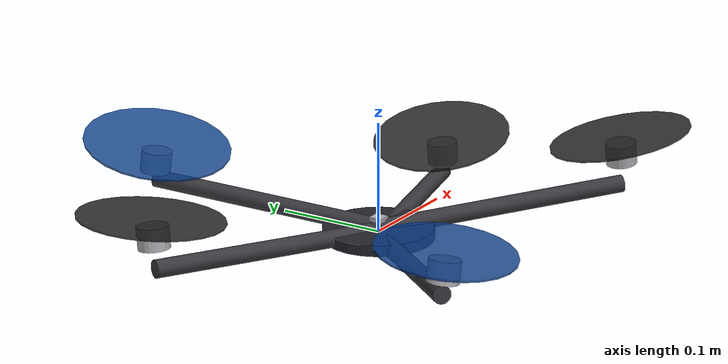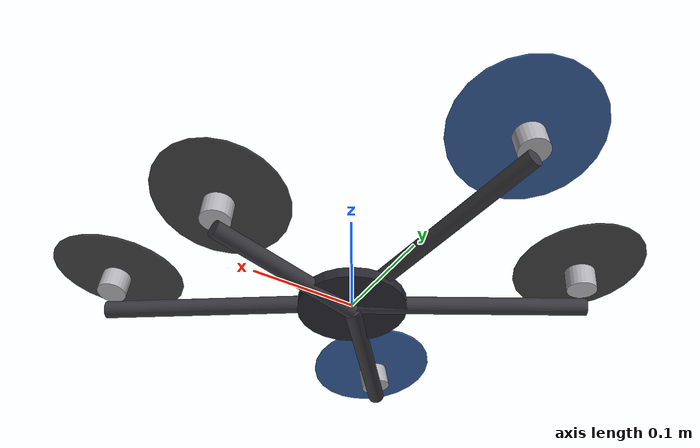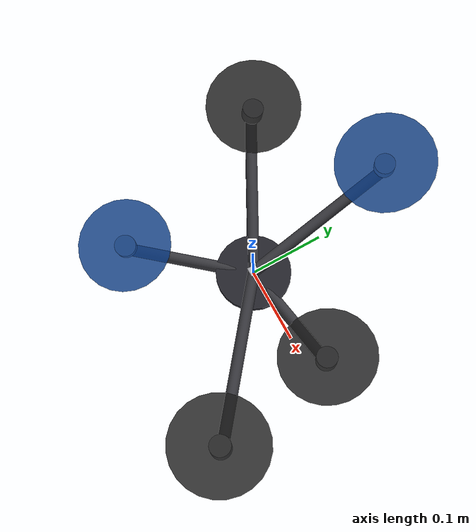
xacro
<?xml version="1.0"?>
<robot name="asymmetric_5rotor_drone" xmlns:xacro="http://www.ros.org/wiki/xacro">

  <material name="mat_core"><color rgba="0.15 0.15 0.18 1.0"/></material>
  <material name="mat_arm"><color rgba="0.22 0.22 0.24 1.0"/></material>
  <material name="mat_motor"><color rgba="0.70 0.70 0.72 1.0"/></material>
  <material name="mat_rotor_ccw"><color rgba="0.10 0.10 0.10 0.85"/></material>
  <material name="mat_rotor_cw"><color rgba="0.05 0.25 0.55 0.85"/></material>

  <xacro:macro name="inertial_box" params="mass x y z">
    <inertial><origin xyz="0 0 0" rpy="0 0 0"/><mass value="${mass}"/><inertia ixx="${mass*(y*y + z*z)/12.0}" ixy="0.0" ixz="0.0" iyy="${mass*(x*x + z*z)/12.0}" iyz="0.0" izz="${mass*(x*x + y*y)/12.0}"/></inertial>
  </xacro:macro>
  <xacro:macro name="inertial_cylinder_z" params="mass radius length">
    <inertial><origin xyz="0 0 0" rpy="0 0 0"/><mass value="${mass}"/><inertia ixx="${mass*(3*radius*radius + length*length)/12.0}" ixy="0.0" ixz="0.0" iyy="${mass*(3*radius*radius + length*length)/12.0}" iyz="0.0" izz="${0.5*mass*radius*radius}"/></inertial>
  </xacro:macro>

  <link name="base_link">
    <visual><geometry><cylinder radius="0.050000" length="0.010000"/></geometry><material name="mat_core"/></visual>
    <collision><geometry><cylinder radius="0.050000" length="0.010000"/></geometry></collision>
    <xacro:inertial_cylinder_z mass="0.400000" radius="0.050000" length="0.010000"/>
  </link>

  <link name="imu_link">
    <visual><origin xyz="0 0 0.012" rpy="0 0 0"/><geometry><box size="0.012 0.012 0.004"/></geometry><material name="mat_motor"/></visual>
    <collision><origin xyz="0 0 0.012" rpy="0 0 0"/><geometry><box size="0.012 0.012 0.004"/></geometry></collision>
    <xacro:inertial_box mass="0.005" x="0.012" y="0.012" z="0.004"/>
  </link>
  <joint name="imu_joint" type="fixed"><parent link="base_link"/><child link="imu_link"/><origin xyz="0 0 0" rpy="0 0 0"/></joint>

  <link name="arm_1_arm_link">
    <visual><origin xyz="0.076341 0 0" rpy="0 1.57079632679 0"/><geometry><cylinder radius="0.008000" length="0.152682"/></geometry><material name="mat_arm"/></visual>
    <collision><origin xyz="0.076341 0 0" rpy="0 1.57079632679 0"/><geometry><cylinder radius="0.008000" length="0.152682"/></geometry></collision>
    <xacro:inertial_cylinder_z mass="0.027483" radius="0.008000" length="0.152682"/>
  </link>
  <joint name="base_to_arm_1_arm_joint" type="fixed"><parent link="base_link"/><child link="arm_1_arm_link"/><origin xyz="0.000000 0.000000 -0.005627" rpy="0.001071 -0.094693 0.157147"/></joint>

  <link name="arm_1_motor_link">
    <visual><geometry><cylinder radius="0.014000" length="0.020000"/></geometry><material name="mat_motor"/></visual>
    <collision><geometry><cylinder radius="0.014000" length="0.020000"/></geometry></collision>
    <xacro:inertial_cylinder_z mass="0.060000" radius="0.014000" length="0.020000"/>
  </link>
  <joint name="arm_1_arm_to_motor_joint" type="fixed"><parent link="arm_1_arm_link"/><child link="arm_1_motor_link"/><origin xyz="0.152682 0.000000 0.019086" rpy="-0.048186 0.023982 0.017977"/></joint>

  <link name="arm_1_rotor_link">
    <visual><origin xyz="0 0 0" rpy="0.000000 0.000000 0.000000"/><geometry><cylinder radius="0.063839" length="0.002000"/></geometry><material name="mat_rotor_ccw"/></visual>
    <collision><origin xyz="0 0 0" rpy="0.000000 0.000000 0.000000"/><geometry><cylinder radius="0.063839" length="0.002000"/></geometry></collision>
    <xacro:inertial_cylinder_z mass="0.010000" radius="0.010000" length="0.006000"/>
  </link>
  <joint name="arm_1_motor_to_rotor_joint" type="fixed"><parent link="arm_1_motor_link"/><child link="arm_1_rotor_link"/><origin xyz="0.000000 0.000000 0.016000" rpy="0.058367 -0.148974 -0.296101"/></joint>

  <link name="arm_2_arm_link">
    <visual><origin xyz="0.111262 0 0" rpy="0 1.57079632679 0"/><geometry><cylinder radius="0.008000" length="0.222524"/></geometry><material name="mat_arm"/></visual>
    <collision><origin xyz="0.111262 0 0" rpy="0 1.57079632679 0"/><geometry><cylinder radius="0.008000" length="0.222524"/></geometry></collision>
    <xacro:inertial_cylinder_z mass="0.040054" radius="0.008000" length="0.222524"/>
  </link>
  <joint name="base_to_arm_2_arm_joint" type="fixed"><parent link="base_link"/><child link="arm_2_arm_link"/><origin xyz="0.000000 0.000000 0.003963" rpy="-0.031950 -0.068904 1.728060"/></joint>

  <link name="arm_2_motor_link">
    <visual><geometry><cylinder radius="0.014000" length="0.020000"/></geometry><material name="mat_motor"/></visual>
    <collision><geometry><cylinder radius="0.014000" length="0.020000"/></geometry></collision>
    <xacro:inertial_cylinder_z mass="0.060000" radius="0.014000" length="0.020000"/>
  </link>
  <joint name="arm_2_arm_to_motor_joint" type="fixed"><parent link="arm_2_arm_link"/><child link="arm_2_motor_link"/><origin xyz="0.222524 0.000000 0.017354" rpy="0.073154 -0.026145 -0.162902"/></joint>

  <link name="arm_2_rotor_link">
    <visual><origin xyz="0 0 0" rpy="0.000000 0.000000 0.000000"/><geometry><cylinder radius="0.067712" length="0.002000"/></geometry><material name="mat_rotor_cw"/></visual>
    <collision><origin xyz="0 0 0" rpy="0.000000 0.000000 0.000000"/><geometry><cylinder radius="0.067712" length="0.002000"/></geometry></collision>
    <xacro:inertial_cylinder_z mass="0.010000" radius="0.010000" length="0.006000"/>
  </link>
  <joint name="arm_2_motor_to_rotor_joint" type="fixed"><parent link="arm_2_motor_link"/><child link="arm_2_rotor_link"/><origin xyz="0.000000 0.000000 0.016000" rpy="-0.127206 -0.097050 0.184277"/></joint>

  <link name="arm_3_arm_link">
    <visual><origin xyz="0.107838 0 0" rpy="0 1.57079632679 0"/><geometry><cylinder radius="0.008000" length="0.215676"/></geometry><material name="mat_arm"/></visual>
    <collision><origin xyz="0.107838 0 0" rpy="0 1.57079632679 0"/><geometry><cylinder radius="0.008000" length="0.215676"/></geometry></collision>
    <xacro:inertial_cylinder_z mass="0.038822" radius="0.008000" length="0.215676"/>
  </link>
  <joint name="base_to_arm_3_arm_joint" type="fixed"><parent link="base_link"/><child link="arm_3_arm_link"/><origin xyz="0.000000 0.000000 0.000725" rpy="0.094623 -0.024293 2.651013"/></joint>

  <link name="arm_3_motor_link">
    <visual><geometry><cylinder radius="0.014000" length="0.020000"/></geometry><material name="mat_motor"/></visual>
    <collision><geometry><cylinder radius="0.014000" length="0.020000"/></geometry></collision>
    <xacro:inertial_cylinder_z mass="0.060000" radius="0.014000" length="0.020000"/>
  </link>
  <joint name="arm_3_arm_to_motor_joint" type="fixed"><parent link="arm_3_arm_link"/><child link="arm_3_motor_link"/><origin xyz="0.215676 0.000000 0.028064" rpy="0.008327 0.052705 0.047408"/></joint>

  <link name="arm_3_rotor_link">
    <visual><origin xyz="0 0 0" rpy="0.000000 0.000000 0.000000"/><geometry><cylinder radius="0.063660" length="0.002000"/></geometry><material name="mat_rotor_ccw"/></visual>
    <collision><origin xyz="0 0 0" rpy="0.000000 0.000000 0.000000"/><geometry><cylinder radius="0.063660" length="0.002000"/></geometry></collision>
    <xacro:inertial_cylinder_z mass="0.010000" radius="0.010000" length="0.006000"/>
  </link>
  <joint name="arm_3_motor_to_rotor_joint" type="fixed"><parent link="arm_3_motor_link"/><child link="arm_3_rotor_link"/><origin xyz="0.000000 0.000000 0.016000" rpy="-0.045052 -0.153526 -0.272505"/></joint>

  <link name="arm_4_arm_link">
    <visual><origin xyz="0.085255 0 0" rpy="0 1.57079632679 0"/><geometry><cylinder radius="0.008000" length="0.170511"/></geometry><material name="mat_arm"/></visual>
    <collision><origin xyz="0.085255 0 0" rpy="0 1.57079632679 0"/><geometry><cylinder radius="0.008000" length="0.170511"/></geometry></collision>
    <xacro:inertial_cylinder_z mass="0.030692" radius="0.008000" length="0.170511"/>
  </link>
  <joint name="base_to_arm_4_arm_joint" type="fixed"><parent link="base_link"/><child link="arm_4_arm_link"/><origin xyz="0.000000 0.000000 -0.004212" rpy="-0.084042 -0.053442 4.017637"/></joint>

  <link name="arm_4_motor_link">
    <visual><geometry><cylinder radius="0.014000" length="0.020000"/></geometry><material name="mat_motor"/></visual>
    <collision><geometry><cylinder radius="0.014000" length="0.020000"/></geometry></collision>
    <xacro:inertial_cylinder_z mass="0.060000" radius="0.014000" length="0.020000"/>
  </link>
  <joint name="arm_4_arm_to_motor_joint" type="fixed"><parent link="arm_4_arm_link"/><child link="arm_4_motor_link"/><origin xyz="0.170511 0.000000 0.021108" rpy="-0.063840 -0.035524 0.054274"/></joint>

  <link name="arm_4_rotor_link">
    <visual><origin xyz="0 0 0" rpy="0.000000 0.000000 0.000000"/><geometry><cylinder radius="0.060553" length="0.002000"/></geometry><material name="mat_rotor_cw"/></visual>
    <collision><origin xyz="0 0 0" rpy="0.000000 0.000000 0.000000"/><geometry><cylinder radius="0.060553" length="0.002000"/></geometry></collision>
    <xacro:inertial_cylinder_z mass="0.010000" radius="0.010000" length="0.006000"/>
  </link>
  <joint name="arm_4_motor_to_rotor_joint" type="fixed"><parent link="arm_4_motor_link"/><child link="arm_4_rotor_link"/><origin xyz="0.000000 0.000000 0.016000" rpy="0.040270 0.154849 -0.139813"/></joint>

  <link name="arm_5_arm_link">
    <visual><origin xyz="0.117149 0 0" rpy="0 1.57079632679 0"/><geometry><cylinder radius="0.008000" length="0.234299"/></geometry><material name="mat_arm"/></visual>
    <collision><origin xyz="0.117149 0 0" rpy="0 1.57079632679 0"/><geometry><cylinder radius="0.008000" length="0.234299"/></geometry></collision>
    <xacro:inertial_cylinder_z mass="0.042174" radius="0.008000" length="0.234299"/>
  </link>
  <joint name="base_to_arm_5_arm_joint" type="fixed"><parent link="base_link"/><child link="arm_5_arm_link"/><origin xyz="0.000000 0.000000 0.002961" rpy="0.021826 -0.065772 5.605730"/></joint>

  <link name="arm_5_motor_link">
    <visual><geometry><cylinder radius="0.014000" length="0.020000"/></geometry><material name="mat_motor"/></visual>
    <collision><geometry><cylinder radius="0.014000" length="0.020000"/></geometry></collision>
    <xacro:inertial_cylinder_z mass="0.060000" radius="0.014000" length="0.020000"/>
  </link>
  <joint name="arm_5_arm_to_motor_joint" type="fixed"><parent link="arm_5_arm_link"/><child link="arm_5_motor_link"/><origin xyz="0.234299 0.000000 0.029853" rpy="0.036660 -0.053856 -0.048218"/></joint>

  <link name="arm_5_rotor_link">
    <visual><origin xyz="0 0 0" rpy="0.000000 0.000000 0.000000"/><geometry><cylinder radius="0.064600" length="0.002000"/></geometry><material name="mat_rotor_ccw"/></visual>
    <collision><origin xyz="0 0 0" rpy="0.000000 0.000000 0.000000"/><geometry><cylinder radius="0.064600" length="0.002000"/></geometry></collision>
    <xacro:inertial_cylinder_z mass="0.010000" radius="0.010000" length="0.006000"/>
  </link>
  <joint name="arm_5_motor_to_rotor_joint" type="fixed"><parent link="arm_5_motor_link"/><child link="arm_5_rotor_link"/><origin xyz="0.000000 0.000000 0.016000" rpy="-0.149866 -0.056038 0.110769"/></joint>

</robot>
